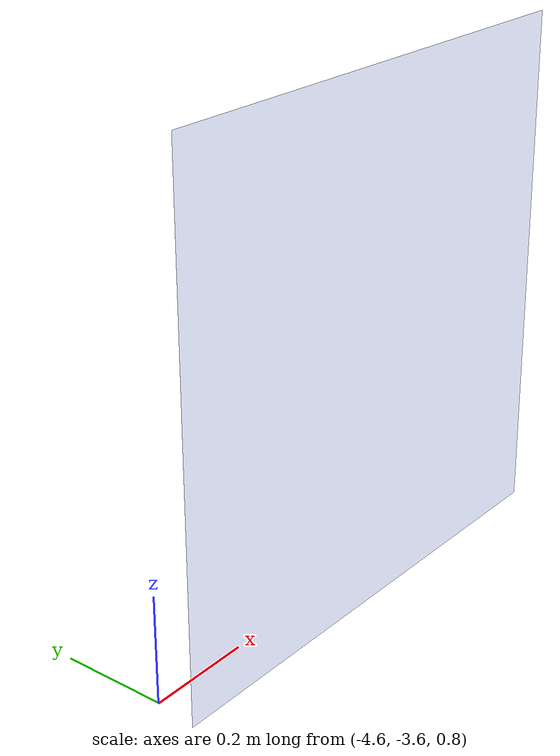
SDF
<?xml version='1.0'?>
<sdf version='1.6'>
  <model name='vidro'>
    <pose frame=''>-4.065 -3.64 0 0 -0 0</pose>
    <link name='Wall_2'>
      <collision name='Wall_2_Collision'>
        <geometry>
          <box>
            <size>1 0.001 1</size>
          </box>
        </geometry>
        <pose frame=''>0 0 1.25 0 -0 0</pose>
      </collision>
      <visual name='Wall_2_Visual'>
        <pose frame=''>0 0 1.25 0 -0 0</pose>
        <transparency>0.8</transparency>
        <geometry>
          <box>
            <size>1 0.001 1</size>
          </box>
        </geometry>
        <material>
          <script>
            <uri>file://media/materials/scripts/gazebo.material</uri>
            <name>Gazebo/BlueTransparent</name>
          </script>
          <ambient>0.1 0.1 0.1 0.1</ambient>
        </material>
        <meta>
          <layer>0</layer>
        </meta>
      </visual>
      <pose frame=''>0 0 0 0 -0 3.14159</pose>
    </link>
    <static>1</static>
  </model>
</sdf>
